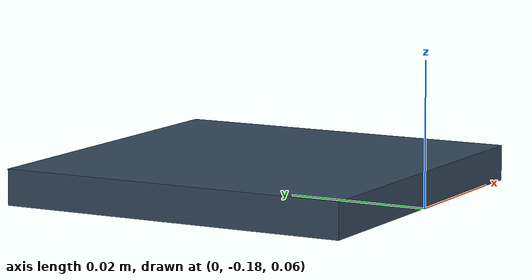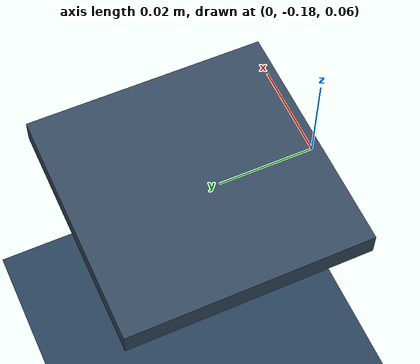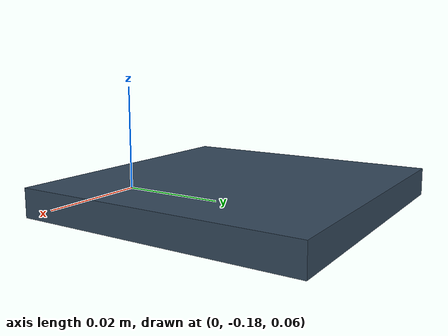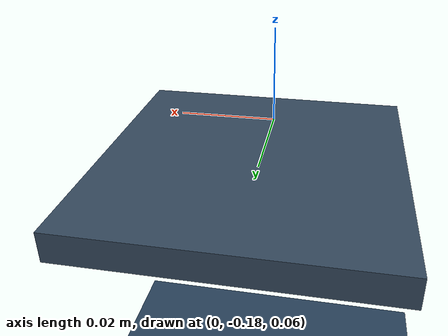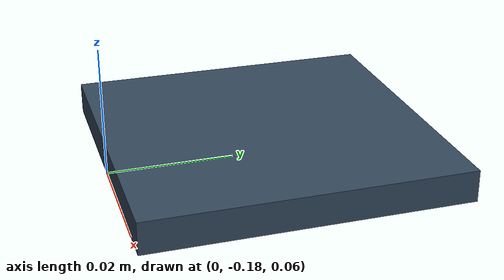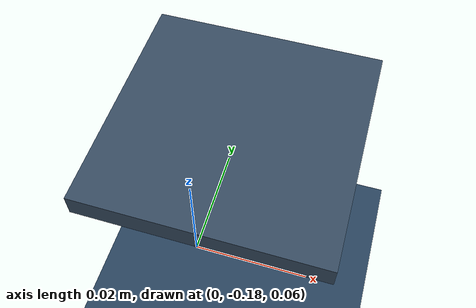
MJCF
<mujoco model="robotiq_grasp_world">
  <compiler angle="radian"/>
  <!-- Keep the contact settings used by the Robotiq assets.  MjSpec.attach()
       keeps parent options when they conflict with a child specification. -->
  <option timestep="0.001" gravity="0 0 -9.81" cone="elliptic" impratio="10"/>
  <!-- touch_grid requires a 128 MiB plugin arena.  MuJoCo forbids mixing this
       modern memory setting with the legacy njmax/nconmax size attributes. -->
  <size memory="134217728"/>

  <visual>
    <headlight diffuse="0.6 0.6 0.6" ambient="0.3 0.3 0.3" specular="0 0 0"/>
    <rgba haze="0.15 0.25 0.35 1"/>
    <global azimuth="160" elevation="-20" offwidth="1920" offheight="1080"/>
  </visual>

  <asset>
    <texture name="skybox" type="skybox" builtin="gradient" rgb1="0.3 0.5 0.7" rgb2="0 0 0"
             width="512" height="3072"/>
    <texture name="groundplane" type="2d" builtin="checker" mark="edge" rgb1="0.2 0.3 0.4"
             rgb2="0.1 0.2 0.3" markrgb="0.8 0.8 0.8" width="300" height="300"/>
    <material name="groundplane" texture="groundplane" texuniform="true" texrepeat="5 5"
              reflectance="0.2"/>
  </asset>

  <worldbody>
    <light pos="0 0 3.5" dir="0 0 -1" directional="true"/>
    <geom name="floor" size="0 0 0.05" pos="0 0 0" type="plane" material="groundplane"
          friction="0.9 0.02 0.001"/>
    <geom name="target_cube_support_plate" type="box" pos="0 -0.155 0.0625"
          size="0.025 0.025 0.0025" friction="0.9 0.02 0.001"
          solimp="0.90 0.95 0.002" solref="0.015 1" rgba="0.20 0.28 0.36 1"/>
    <camera name="grasp_overview" pos="0.28 -0.35 0.22"
            xyaxes="0.78 0.62 0 -0.30 0.38 0.87"/>
  </worldbody>
</mujoco>
